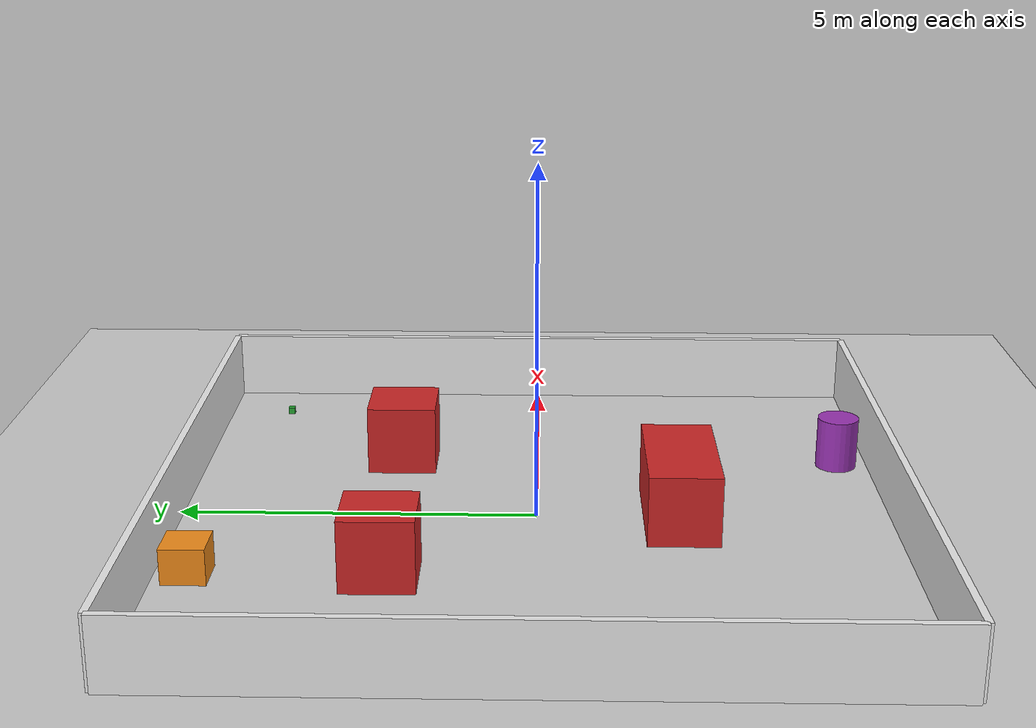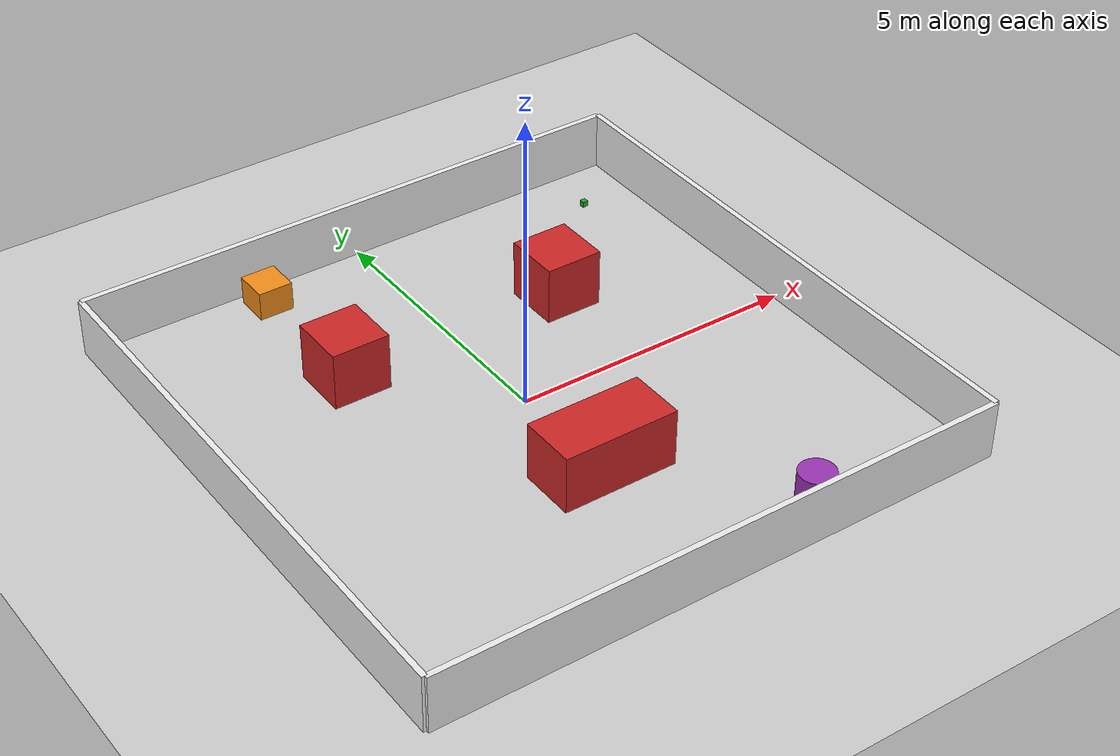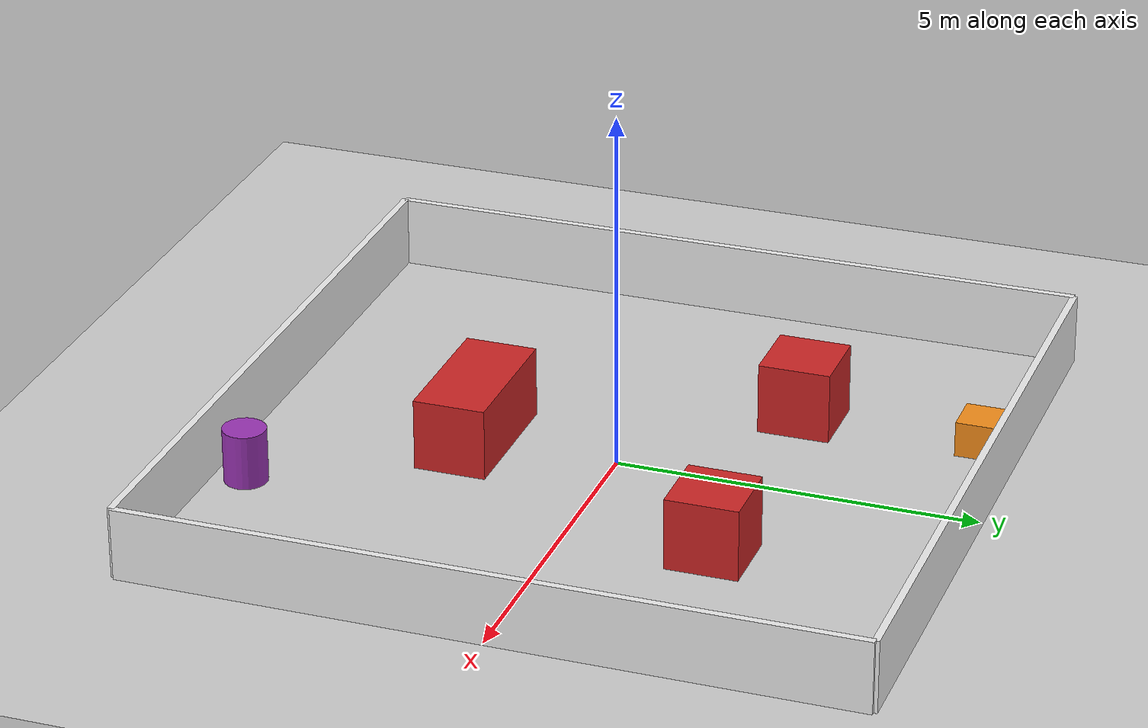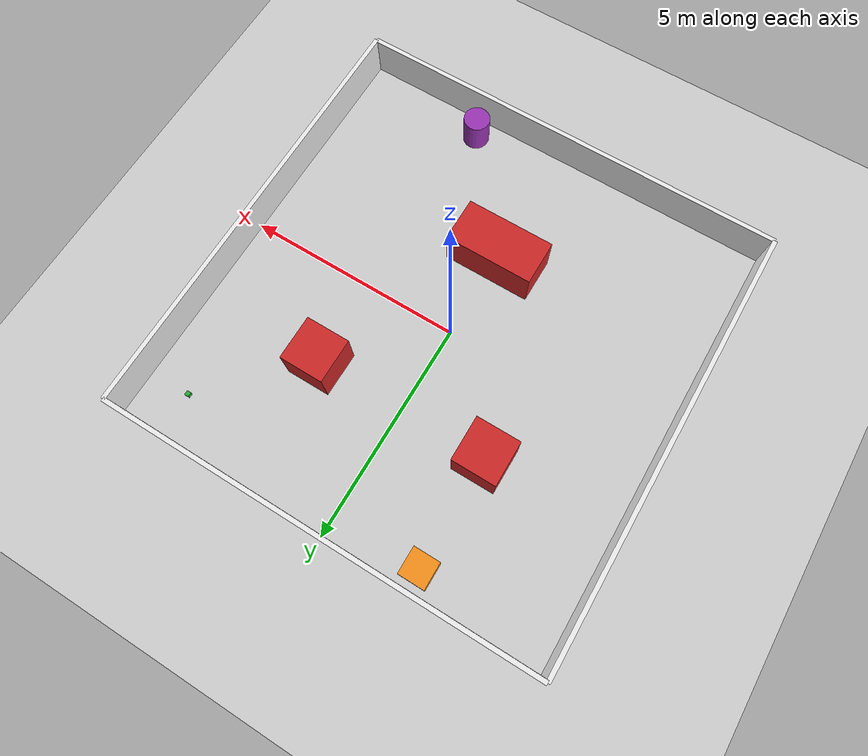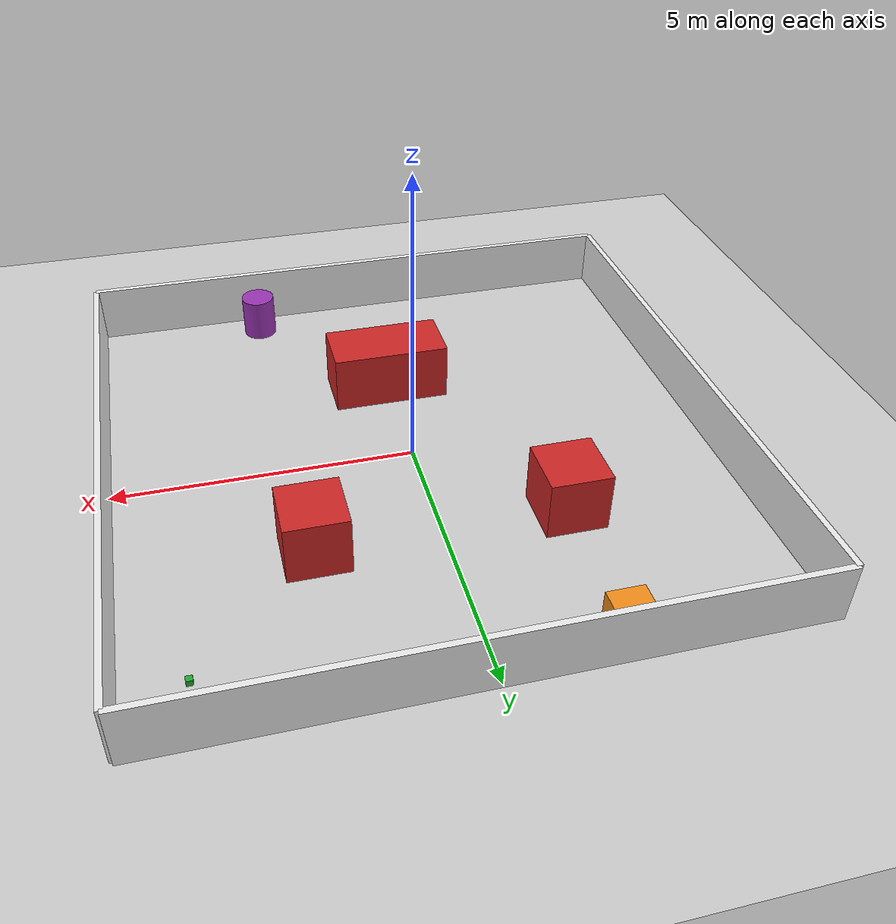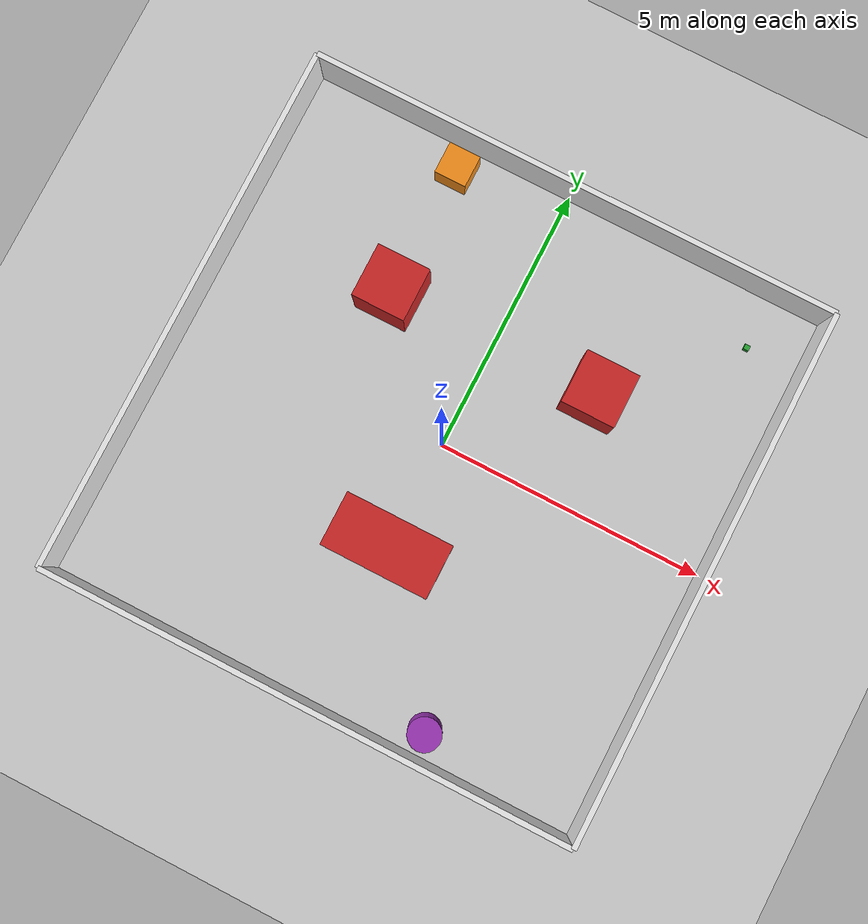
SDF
<?xml version="1.0" ?>
<sdf version="1.7">
  <world name="task_world">

    <!-- Ground Plane -->
    <model name="ground_plane">
      <static>true</static>
      <link name="link">
        <collision name="collision">
          <geometry>
            <plane>
              <normal>0 0 1</normal>
              <size>20 20</size>  <!-- Adjusted to match smaller area -->
            </plane>
          </geometry>
          <surface>
            <friction>
              <ode>
                <mu>0.6</mu>
                <mu2>0.6</mu2>
              </ode>
            </friction>
          </surface>
        </collision>
        <visual name="visual">
          <geometry>
            <plane>
              <normal>0 0 1</normal>
              <size>20 20</size>
            </plane>
          </geometry>
          <material>
            <script>
              <uri>file://media/materials/scripts/gazebo.material</uri>
              <name>Gazebo/Grey</name>
            </script>
          </material>
        </visual>
      </link>
    </model>

    <!-- Boundaries (Walls) -->
    <model name="wall_north">
      <static>true</static>
      <pose>0 5 0.5 0 0 0</pose>  <!-- moved from y=10 to y=5 -->
      <link name="link">
        <collision name="collision">
          <geometry><box><size>10.0 0.1 1.0</size></box></geometry>
        </collision>
        <visual name="visual">
          <geometry><box><size>10.0 0.1 1.0</size></box></geometry>
          <material>
            <script><uri>file://media/materials/scripts/gazebo.material</uri><name>Gazebo/White</name></script>
          </material>
        </visual>
      </link>
    </model>

    <model name="wall_south">
      <static>true</static>
      <pose>0 -5 0.5 0 0 0</pose>  <!-- moved from y=-10 to y=-5 -->
      <link name="link">
        <collision name="collision">
          <geometry><box><size>10.0 0.1 1.0</size></box></geometry>
        </collision>
        <visual name="visual">
          <geometry><box><size>10.0 0.1 1.0</size></box></geometry>
          <material>
            <script><uri>file://media/materials/scripts/gazebo.material</uri><name>Gazebo/White</name></script>
          </material>
        </visual>
      </link>
    </model>

    <model name="wall_east">
      <static>true</static>
      <pose>5 0 0.5 0 0 1.5708</pose>  <!-- moved from x=10 to x=5 -->
      <link name="link">
        <collision name="collision">
          <geometry><box><size>10.0 0.1 1.0</size></box></geometry>
        </collision>
        <visual name="visual">
          <geometry><box><size>10.0 0.1 1.0</size></box></geometry>
          <material>
            <script><uri>file://media/materials/scripts/gazebo.material</uri><name>Gazebo/White</name></script>
          </material>
        </visual>
      </link>
    </model>

    <model name="wall_west">
      <static>true</static>
      <pose>-5 0 0.5 0 0 1.5708</pose>  <!-- moved from x=-10 to x=-5 -->
      <link name="link">
        <collision name="collision">
          <geometry><box><size>10.0 0.1 1.0</size></box></geometry>
        </collision>
        <visual name="visual">
          <geometry><box><size>10.0 0.1 1.0</size></box></geometry>
          <material>
            <script><uri>file://media/materials/scripts/gazebo.material</uri><name>Gazebo/White</name></script>
          </material>
        </visual>
      </link>
    </model>

    <!-- Obstacles - all repositioned to fit inside 10x10 -->
    <model name="obstacle1">
      <static>true</static>
      <pose>-2 2 0.5 0 0 0</pose> <!-- moved from -5,5 to -2,2 -->
      <link name="link">
        <collision name="collision">
          <geometry><box><size>1 1 1</size></box></geometry>
        </collision>
        <visual name="visual">
          <geometry><box><size>1 1 1</size></box></geometry>
          <material>
            <script><uri>file://media/materials/scripts/gazebo.material</uri><name>Gazebo/Red</name></script>
          </material>
        </visual>
      </link>
    </model>

    <model name="obstacle2">
      <static>true</static>
      <pose>2 2 0.5 0 0 0</pose> <!-- moved from 5,5 to 2,2 -->
      <link name="link">
        <collision name="collision">
          <geometry><box><size>1 1 1</size></box></geometry>
        </collision>
        <visual name="visual">
          <geometry><box><size>1 1 1</size></box></geometry>
          <material>
            <script><uri>file://media/materials/scripts/gazebo.material</uri><name>Gazebo/Red</name></script>
          </material>
        </visual>
      </link>
    </model>

    <model name="obstacle3">
      <static>true</static>
      <pose>0 -2 0.5 0 0 0</pose> <!-- moved from 0,-3 to 0,-2 -->
      <link name="link">
        <collision name="collision">
          <geometry><box><size>2 1 1</size></box></geometry>
        </collision>
        <visual name="visual">
          <geometry><box><size>2 1 1</size></box></geometry>
          <material>
            <script><uri>file://media/materials/scripts/gazebo.material</uri><name>Gazebo/Red</name></script>
          </material>
        </visual>
      </link>
    </model>

    <model name="obstacle_4">
      <static>true</static>
      <pose>-2.0 4.5 0.25 0 0 0</pose> <!-- moved from -4,11 to -2,4.5 inside -->
      <link name="link">
        <collision name="collision">
          <geometry>
            <box>
              <size>0.6 0.6 0.5</size>
            </box>
          </geometry>
        </collision>
        <visual name="visual">
          <geometry>
            <box>
              <size>0.6 0.6 0.5</size>
            </box>
          </geometry>
          <material>
            <script>
              <uri>file://media/materials/scripts/gazebo.material</uri>
              <name>Gazebo/Orange</name>
            </script>
          </material>
        </visual>
      </link>
    </model>

    <model name="obstacle_5">
      <static>true</static>
      <pose>2.0 -4.5 0.25 0 0 0</pose> <!-- moved from 4,-11 to 2,-4.5 inside -->
      <link name="link">
        <collision name="collision">
          <geometry>
            <cylinder>
              <radius>0.3</radius>
              <height>0.5</height>
            </cylinder>
          </geometry>
        </collision>
        <visual name="visual">
          <geometry>
            <cylinder>
              <radius>0.3</radius>
              <height>0.5</height>
            </cylinder>
          </geometry>
          <material>
            <script>
              <uri>file://media/materials/scripts/gazebo.material</uri>
              <name>Gazebo/Purple</name>
            </script>
          </material>
        </visual>
      </link>
    </model>

    <!-- Pickable Object -->
    <model name="pickable_object">
      <pose>4 4 0.05 0 0 0</pose> <!-- moved from 10,10 to 4,4 -->
      <link name="link">
        <collision name="collision">
          <geometry>
            <box>
              <size>0.1 0.1 0.1</size>
            </box>
          </geometry>
        </collision>
        <visual name="visual">
          <geometry>
            <box>
              <size>0.1 0.1 0.1</size>
            </box>
          </geometry>
          <material>
            <script>
              <uri>file://media/materials/scripts/gazebo.material</uri>
              <name>Gazebo/Green</name>
            </script>
          </material>
        </visual>
        <inertial>
          <mass>0.5</mass>
          <inertia>
            <ixx>0.000833</ixx>
            <ixy>0.0</ixy>
            <ixz>0.0</ixz>
            <iyy>0.000833</iyy>
            <iyz>0.0</iyz>
            <izz>0.000833</izz>
          </inertia>
        </inertial>
      </link>
    </model>

    <!-- Lighting -->
    <light name="sun" type="directional">
      <pose>0 0 10 0 0 0</pose>
      <diffuse>0.8 0.8 0.8 1</diffuse>
      <specular>0.2 0.2 0.2 1</specular>
      <direction>0.0 0.0 -1.0</direction>
    </light>

    <!-- Physics Settings -->
    <physics type="ode">
      <max_step_size>0.001</max_step_size>
      <real_time_factor>1.0</real_time_factor>
      <real_time_update_rate>1000</real_time_update_rate>
    </physics>

  </world>
</sdf>
